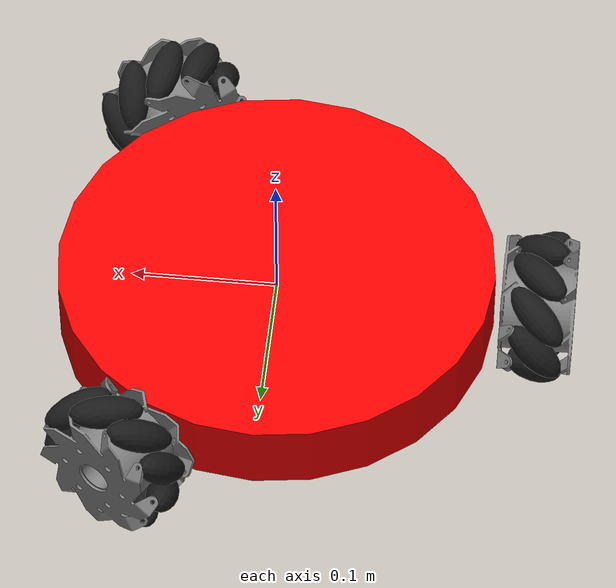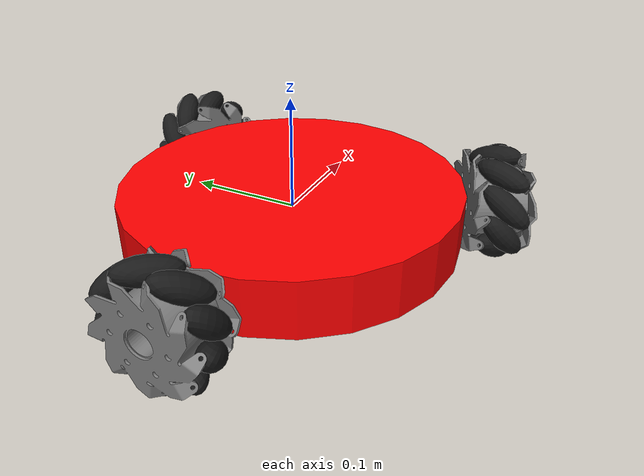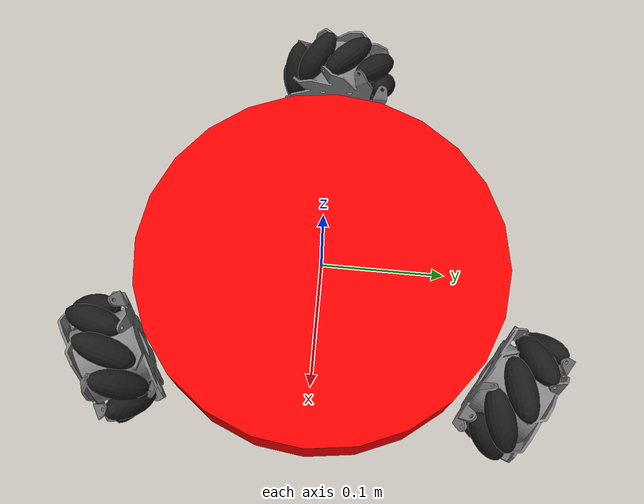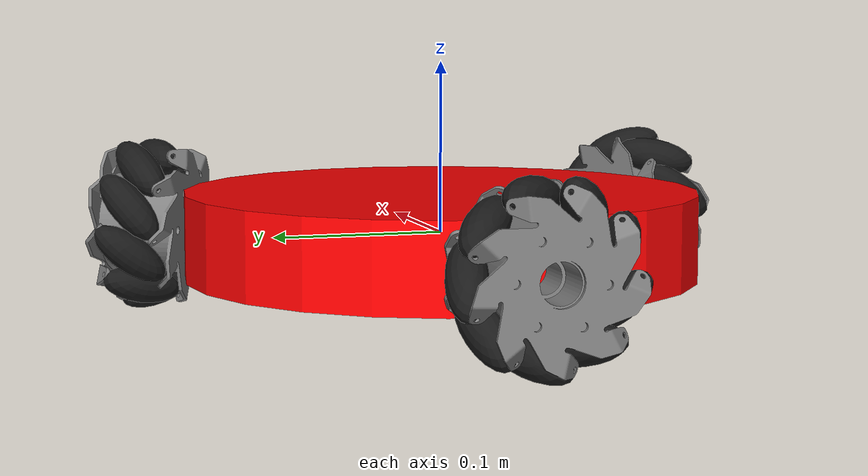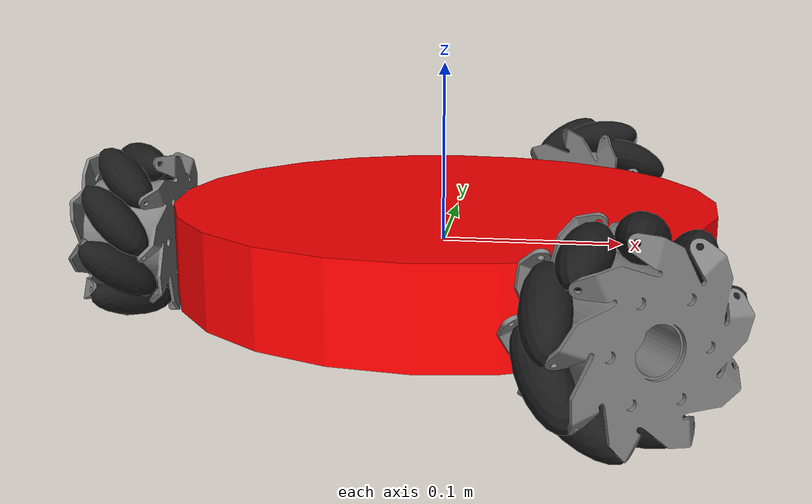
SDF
<?xml version="1.0"?>
<sdf version="1.9">
  <model name="omni3rover">
    <link name="base_link">
      <inertial>
        <mass>1.0</mass>
        <inertia>
          <ixx>0.00875</ixx>
          <ixy>0</ixy>
          <ixz>0</ixz>
          <iyy>0.00875</iyy>
          <iyz>0</iyz>
          <izz>0.016875</izz>
        </inertia>
      </inertial>
      <collision name="collision">
        <geometry>
          <cylinder>
            <radius>0.15</radius>
            <length>0.05</length>
          </cylinder>
        </geometry>
      </collision>
      <visual name="visual">
        <geometry>
          <cylinder>
            <radius>0.15</radius>
            <length>0.05</length>
          </cylinder>
        </geometry>
        <material>
          <ambient>1 0 0</ambient>
          <diffuse>1 0 0</diffuse>
          <specular>0.1 0.1 0.1</specular>
        </material>
      </visual>

      <!-- senors -->
      <sensor name="imu_sensor" type="imu">
        <pose degrees="true">0 0 0 180 0 0</pose>
        <always_on>1</always_on>
        <update_rate>1000.0</update_rate>
      </sensor>
    </link>

    <!-- wheels -->
    <include>
      <uri>model://mecanum_wheel_left</uri>
      <pose degrees="true">0.09 -0.155884573 0 90 0 30</pose>
      <name>wheel_1</name>
    </include>
    <joint name="wheel_1_joint" type="revolute">
      <child>wheel_1::wheel_link</child>
      <parent>base_link</parent>
      <axis>
        <xyz>0 0 1</xyz>
        <limit>
          <lower>-1.0e16</lower>
          <upper>1.0e16</upper>
          <effort>1.0e6</effort>
        </limit>
        <dynamics>
          <damping>0.0001</damping>
        </dynamics>
      </axis>
    </joint>

    <include>
      <uri>model://mecanum_wheel_left</uri>
      <pose degrees="true">-0.18 0 0 -90 0 90</pose>
      <name>wheel_2</name>
    </include>
    <joint name="wheel_2_joint" type="revolute">
      <child>wheel_2::wheel_link</child>
      <parent>base_link</parent>
      <axis>
        <xyz>0 0 1</xyz>
        <limit>
          <lower>-1.0e16</lower>
          <upper>1.0e16</upper>
          <effort>1.0e6</effort>
        </limit>
        <dynamics>
          <damping>0.0001</damping>
        </dynamics>
      </axis>
    </joint>

    <include>
      <uri>model://mecanum_wheel_left</uri>
      <pose degrees="true">0.09 0.155884573 0 -90 0 -30</pose>
      <name>wheel_3</name>
    </include>
    <joint name="wheel_3_joint" type="revolute">
      <child>wheel_3::wheel_link</child>
      <parent>base_link</parent>
      <axis>
        <xyz>0 0 1</xyz>
        <limit>
          <lower>-1.0e16</lower>
          <upper>1.0e16</upper>
          <effort>1.0e6</effort>
        </limit>
        <dynamics>
          <damping>0.0001</damping>
        </dynamics>
      </axis>
    </joint>

    <plugin filename="gz-sim-joint-state-publisher-system"
      name="gz::sim::systems::JointStatePublisher">
    </plugin>
    <plugin
      filename="gz-sim-odometry-publisher-system"
      name="gz::sim::systems::OdometryPublisher">
      <odom_frame>odom</odom_frame>
      <robot_base_frame>base_link</robot_base_frame>
      <dimensions>3</dimensions>
    </plugin>

    <plugin name="gz::sim::systems::JointController"
      filename="gz-sim-joint-controller-system">
      <joint_name>wheel_1_joint</joint_name>
      <use_force_commands>1</use_force_commands>
      <topic>/model/omni3rover/joint/wheel_1_joint/cmd_vel</topic>
      <initial_velocity>0.0</initial_velocity>
      <p_gain>0.3</p_gain>
      <d_gain>1.0e-4</d_gain>
      <cmd_max>1.0e6</cmd_max>
      <cmd_min>-1.0e6</cmd_min>
    </plugin>
    <plugin name="gz::sim::systems::JointController"
      filename="gz-sim-joint-controller-system">
      <joint_name>wheel_2_joint</joint_name>
      <use_force_commands>1</use_force_commands>
      <topic>/model/omni3rover/joint/wheel_2_joint/cmd_vel</topic>
      <initial_velocity>0.0</initial_velocity>
      <p_gain>0.3</p_gain>
      <d_gain>1.0e-4</d_gain>
      <cmd_max>1.0e6</cmd_max>
      <cmd_min>-1.0e6</cmd_min>
    </plugin>
    <plugin name="gz::sim::systems::JointController"
      filename="gz-sim-joint-controller-system">
      <joint_name>wheel_3_joint</joint_name>
      <use_force_commands>1</use_force_commands>
      <topic>/model/omni3rover/joint/wheel_3_joint/cmd_vel</topic>
      <initial_velocity>0.0</initial_velocity>
      <p_gain>0.3</p_gain>
      <d_gain>1.0e-4</d_gain>
      <cmd_max>1.0e6</cmd_max>
      <cmd_min>-1.0e6</cmd_min>
    </plugin>

    <plugin name="ArduPilotPlugin"
      filename="ArduPilotPlugin">
      <fdm_addr>127.0.0.1</fdm_addr>
      <fdm_port_in>9002</fdm_port_in>
      <connectionTimeoutMaxCount>5</connectionTimeoutMaxCount>
      <lock_step>1</lock_step>
      <no_time_sync>1</no_time_sync>
      <have_32_channels>0</have_32_channels>
      <modelXYZToAirplaneXForwardZDown degrees="true">0 0 0 180 0 0</modelXYZToAirplaneXForwardZDown>
      <gazeboXYZToNED degrees="true">0 0 0 180 0 90</gazeboXYZToNED>
      <imuName>base_link::imu_sensor</imuName>

      <control channel="0">
        <jointName>wheel_1_joint</jointName>
        <useForce>1</useForce>
        <multiplier>100</multiplier>
        <offset>-0.5</offset>
        <servo_max>2000</servo_max>
        <servo_min>1000</servo_min>
        <type>COMMAND</type>
        <cmd_topic>/model/omni3rover/joint/wheel_1_joint/cmd_vel</cmd_topic>
      </control>

      <control channel="1">
        <jointName>wheel_2_joint</jointName>
        <useForce>1</useForce>
        <multiplier>100</multiplier>
        <offset>-0.5</offset>
        <servo_max>2000</servo_max>
        <servo_min>1000</servo_min>
        <type>COMMAND</type>
        <cmd_topic>/model/omni3rover/joint/wheel_2_joint/cmd_vel</cmd_topic>
      </control>

      <control channel="2">
        <jointName>wheel_3_joint</jointName>
        <useForce>1</useForce>
        <multiplier>100</multiplier>
        <offset>-0.5</offset>
        <servo_max>2000</servo_max>
        <servo_min>1000</servo_min>
        <type>COMMAND</type>
        <cmd_topic>/model/omni3rover/joint/wheel_3_joint/cmd_vel</cmd_topic>
      </control>
    </plugin>

  </model>
</sdf>

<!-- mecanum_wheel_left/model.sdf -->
<sdf version="1.9">
  <model name="mecanum_wheel_left">
    <link name="wheel_link">
      <pose>0 0 0 0 0 0</pose>
      <inertial>
        <pose>0 0 0 0 0 0</pose>
        <mass>0.045</mass>
        <inertia>
          <ixx>3.44913E-05</ixx>
          <ixy>0</ixy>
          <ixz>0</ixz>
          <iyy>3.44913E-05</iyy>
          <iyz>0</iyz>
          <izz>5.02327E-05</izz>
        </inertia>
      </inertial>
      <collision name="wheel1_collision">
        <pose>0 0 0.0225 0 0 0</pose>
        <geometry>
          <cylinder>
            <radius>0.04725</radius>
            <length>0.005</length>
          </cylinder>
        </geometry>
      </collision>
      <collision name="wheel2_collision">
        <pose>0 0 -0.0225 0 0 0</pose>
        <geometry>
          <cylinder>
            <radius>0.04725</radius>
            <length>0.005</length>
          </cylinder>
        </geometry>
      </collision>
      <visual name="wheel_visual">
        <geometry>
          <mesh>
            <uri>models://mecanum_wheel_left/meshes/mecanum_wheel_frame_left.stl</uri>
          </mesh>
        </geometry>
        <material>
          <ambient>0.5 0.5 0.5</ambient>
          <diffuse>0.5 0.5 0.5</diffuse>
          <specular>0.1 0.1 0.1</specular>
        </material>
      </visual>

    </link>

    <link name="roller_1_link">
      <pose degrees="true">0.040288288 0 0 -45 2 0</pose>
      <inertial>
        <pose>0 0 0 0 0 0</pose>
        <mass>0.015838863</mass>
        <inertia>
          <ixx>2.36316E-06</ixx>
          <ixy>0</ixy>
          <ixz>0</ixz>
          <iyy>2.36316E-06</iyy>
          <iyz>0</iyz>
          <izz>7.66601E-07</izz>
        </inertia>
      </inertial>
      <collision name="collision">
        <pose degrees="true">0 0 0 90 9 0</pose>
        <geometry>
          <sphere>
            <radius>0.011</radius>
          </sphere>
        </geometry>
        <surface>
          <friction>
            <ode>
              <mu>10.0</mu>
              <mu2>10.0</mu2>
            </ode>
          </friction>
        </surface>
      </collision>
      <visual name="visual">
        <pose degrees="true">0 0 0 90 9 0</pose>
        <geometry>
          <ellipsoid>
            <radii>0.011 0.025 0.011</radii>
          </ellipsoid>
        </geometry>
        <material>
          <ambient>0.1 0.1 0.1</ambient>
          <diffuse>0.1 0.1 0.1</diffuse>
          <specular>0.1 0.1 0.1</specular>
        </material>
      </visual>
    </link>
    <joint name="roller_1_joint" type="revolute">
      <child>roller_1_link</child>
      <parent>wheel_link</parent>
      <axis>
        <xyz>0 0 1</xyz>
        <limit>
          <lower>-1.0e16</lower>
          <upper>1.0e16</upper>
        </limit>
        <dynamics>
          <damping>0.0000</damping>
          <friction>0.0001</friction>
        </dynamics>
      </axis>
    </joint>

    <link name="roller_2_link">
      <pose degrees="true">0.030862619 0.025896812 0 -45 2 40</pose>
      <inertial>
        <pose>0 0 0 0 0 0</pose>
        <mass>0.015838863</mass>
        <inertia>
          <ixx>2.36316E-06</ixx>
          <ixy>0</ixy>
          <ixz>0</ixz>
          <iyy>2.36316E-06</iyy>
          <iyz>0</iyz>
          <izz>7.66601E-07</izz>
        </inertia>
      </inertial>
      <collision name="collision">
        <pose degrees="true">0 0 0 90 9 0</pose>
        <geometry>
          <sphere>
            <radius>0.011</radius>
          </sphere>
        </geometry>
        <surface>
          <friction>
            <ode>
              <mu>10.0</mu>
              <mu2>10.0</mu2>
            </ode>
          </friction>
        </surface>
      </collision>
      <visual name="visual">
        <pose degrees="true">0 0 0 90 9 0</pose>
        <geometry>
          <ellipsoid>
            <radii>0.011 0.025 0.011</radii>
          </ellipsoid>
        </geometry>
        <material>
          <ambient>0.1 0.1 0.1</ambient>
          <diffuse>0.1 0.1 0.1</diffuse>
          <specular>0.1 0.1 0.1</specular>
        </material>
      </visual>
    </link>
    <joint name="roller_2_joint" type="revolute">
      <child>roller_2_link</child>
      <parent>wheel_link</parent>
      <axis>
        <xyz>0 0 1</xyz>
        <limit>
          <lower>-1.0e16</lower>
          <upper>1.0e16</upper>
        </limit>
        <dynamics>
          <damping>0.0000</damping>
          <friction>0.0001</friction>
        </dynamics>
      </axis>
    </joint>

    <link name="roller_3_link">
      <pose degrees="true">0.006995988 0.039676218 0 -45 2 80</pose>
      <inertial>
        <pose>0 0 0 0 0 0</pose>
        <mass>0.015838863</mass>
        <inertia>
          <ixx>2.36316E-06</ixx>
          <ixy>0</ixy>
          <ixz>0</ixz>
          <iyy>2.36316E-06</iyy>
          <iyz>0</iyz>
          <izz>7.66601E-07</izz>
        </inertia>
      </inertial>
      <collision name="collision">
        <pose degrees="true">0 0 0 90 9 0</pose>
        <geometry>
          <sphere>
            <radius>0.011</radius>
          </sphere>
        </geometry>
        <surface>
          <friction>
            <ode>
              <mu>10.0</mu>
              <mu2>10.0</mu2>
            </ode>
          </friction>
        </surface>
      </collision>
      <visual name="visual">
        <pose degrees="true">0 0 0 90 9 0</pose>
        <geometry>
          <ellipsoid>
            <radii>0.011 0.025 0.011</radii>
          </ellipsoid>
        </geometry>
        <material>
          <ambient>0.1 0.1 0.1</ambient>
          <diffuse>0.1 0.1 0.1</diffuse>
          <specular>0.1 0.1 0.1</specular>
        </material>
      </visual>
    </link>
    <joint name="roller_3_joint" type="revolute">
      <child>roller_3_link</child>
      <parent>wheel_link</parent>
      <axis>
        <xyz>0 0 1</xyz>
        <limit>
          <lower>-1.0e16</lower>
          <upper>1.0e16</upper>
        </limit>
        <dynamics>
          <damping>0.0000</damping>
          <friction>0.0001</friction>
        </dynamics>
      </axis>
    </joint>

    <link name="roller_4_link">
      <pose degrees="true">-0.020144144 0.034890681 0 -45 2 120</pose>
      <inertial>
        <pose>0 0 0 0 0 0</pose>
        <mass>0.015838863</mass>
        <inertia>
          <ixx>2.36316E-06</ixx>
          <ixy>0</ixy>
          <ixz>0</ixz>
          <iyy>2.36316E-06</iyy>
          <iyz>0</iyz>
          <izz>7.66601E-07</izz>
        </inertia>
      </inertial>
      <collision name="collision">
        <pose degrees="true">0 0 0 90 9 0</pose>
        <geometry>
          <sphere>
            <radius>0.011</radius>
          </sphere>
        </geometry>
        <surface>
          <friction>
            <ode>
              <mu>10.0</mu>
              <mu2>10.0</mu2>
            </ode>
          </friction>
        </surface>
      </collision>
      <visual name="visual">
        <pose degrees="true">0 0 0 90 9 0</pose>
        <geometry>
          <ellipsoid>
            <radii>0.011 0.025 0.011</radii>
          </ellipsoid>
        </geometry>
        <material>
          <ambient>0.1 0.1 0.1</ambient>
          <diffuse>0.1 0.1 0.1</diffuse>
          <specular>0.1 0.1 0.1</specular>
        </material>
      </visual>
    </link>
    <joint name="roller_4_joint" type="revolute">
      <child>roller_4_link</child>
      <parent>wheel_link</parent>
      <axis>
        <xyz>0 0 1</xyz>
        <limit>
          <lower>-1.0e16</lower>
          <upper>1.0e16</upper>
        </limit>
        <dynamics>
          <damping>0.0000</damping>
          <friction>0.0001</friction>
        </dynamics>
      </axis>
    </joint>

    <link name="roller_5_link">
      <pose degrees="true">-0.037858607 0.013779406 0 -45 2 160</pose>
      <inertial>
        <pose>0 0 0 0 0 0</pose>
        <mass>0.015838863</mass>
        <inertia>
          <ixx>2.36316E-06</ixx>
          <ixy>0</ixy>
          <ixz>0</ixz>
          <iyy>2.36316E-06</iyy>
          <iyz>0</iyz>
          <izz>7.66601E-07</izz>
        </inertia>
      </inertial>
      <collision name="collision">
        <pose degrees="true">0 0 0 90 9 0</pose>
        <geometry>
          <sphere>
            <radius>0.011</radius>
          </sphere>
        </geometry>
        <surface>
          <friction>
            <ode>
              <mu>10.0</mu>
              <mu2>10.0</mu2>
            </ode>
          </friction>
        </surface>
      </collision>
      <visual name="visual">
        <pose degrees="true">0 0 0 90 9 0</pose>
        <geometry>
          <ellipsoid>
            <radii>0.011 0.025 0.011</radii>
          </ellipsoid>
        </geometry>
        <material>
          <ambient>0.1 0.1 0.1</ambient>
          <diffuse>0.1 0.1 0.1</diffuse>
          <specular>0.1 0.1 0.1</specular>
        </material>
      </visual>
    </link>
    <joint name="roller_5_joint" type="revolute">
      <child>roller_5_link</child>
      <parent>wheel_link</parent>
      <axis>
        <xyz>0 0 1</xyz>
        <limit>
          <lower>-1.0e16</lower>
          <upper>1.0e16</upper>
        </limit>
        <dynamics>
          <damping>0.0000</damping>
          <friction>0.0001</friction>
        </dynamics>
      </axis>
    </joint>

    <link name="roller_6_link">
      <pose degrees="true">-0.037858607 -0.013779406 0 -45 2 200</pose>
      <inertial>
        <pose>0 0 0 0 0 0</pose>
        <mass>0.015838863</mass>
        <inertia>
          <ixx>2.36316E-06</ixx>
          <ixy>0</ixy>
          <ixz>0</ixz>
          <iyy>2.36316E-06</iyy>
          <iyz>0</iyz>
          <izz>7.66601E-07</izz>
        </inertia>
      </inertial>
      <collision name="collision">
        <pose degrees="true">0 0 0 90 9 0</pose>
        <geometry>
          <sphere>
            <radius>0.011</radius>
          </sphere>
        </geometry>
        <surface>
          <friction>
            <ode>
              <mu>10.0</mu>
              <mu2>10.0</mu2>
            </ode>
          </friction>
        </surface>
      </collision>
      <visual name="visual">
        <pose degrees="true">0 0 0 90 9 0</pose>
        <geometry>
          <ellipsoid>
            <radii>0.011 0.025 0.011</radii>
          </ellipsoid>
        </geometry>
        <material>
          <ambient>0.1 0.1 0.1</ambient>
          <diffuse>0.1 0.1 0.1</diffuse>
          <specular>0.1 0.1 0.1</specular>
        </material>
      </visual>
    </link>
    <joint name="roller_6_joint" type="revolute">
      <child>roller_6_link</child>
      <parent>wheel_link</parent>
      <axis>
        <xyz>0 0 1</xyz>
        <limit>
          <lower>-1.0e16</lower>
          <upper>1.0e16</upper>
        </limit>
        <dynamics>
          <damping>0.0000</damping>
          <friction>0.0001</friction>
        </dynamics>
      </axis>
    </joint>

    <link name="roller_7_link">
      <pose degrees="true">-0.020144144 -0.034890681 0 -45 2 240</pose>
      <inertial>
        <pose>0 0 0 0 0 0</pose>
        <mass>0.015838863</mass>
        <inertia>
          <ixx>2.36316E-06</ixx>
          <ixy>0</ixy>
          <ixz>0</ixz>
          <iyy>2.36316E-06</iyy>
          <iyz>0</iyz>
          <izz>7.66601E-07</izz>
        </inertia>
      </inertial>
      <collision name="collision">
        <pose degrees="true">0 0 0 90 9 0</pose>
        <geometry>
          <sphere>
            <radius>0.011</radius>
          </sphere>
        </geometry>
        <surface>
          <friction>
            <ode>
              <mu>10.0</mu>
              <mu2>10.0</mu2>
            </ode>
          </friction>
        </surface>
      </collision>
      <visual name="visual">
        <pose degrees="true">0 0 0 90 9 0</pose>
        <geometry>
          <ellipsoid>
            <radii>0.011 0.025 0.011</radii>
          </ellipsoid>
        </geometry>
        <material>
          <ambient>0.1 0.1 0.1</ambient>
          <diffuse>0.1 0.1 0.1</diffuse>
          <specular>0.1 0.1 0.1</specular>
        </material>
      </visual>
    </link>
    <joint name="roller_7_joint" type="revolute">
      <child>roller_7_link</child>
      <parent>wheel_link</parent>
      <axis>
        <xyz>0 0 1</xyz>
        <limit>
          <lower>-1.0e16</lower>
          <upper>1.0e16</upper>
        </limit>
        <dynamics>
          <damping>0.0000</damping>
          <friction>0.0001</friction>
        </dynamics>
      </axis>
    </joint>

    <link name="roller_8_link">
      <pose degrees="true">0.006995988 -0.039676218 0 -45 2 280</pose>
      <inertial>
        <pose>0 0 0 0 0 0</pose>
        <mass>0.015838863</mass>
        <inertia>
          <ixx>2.36316E-06</ixx>
          <ixy>0</ixy>
          <ixz>0</ixz>
          <iyy>2.36316E-06</iyy>
          <iyz>0</iyz>
          <izz>7.66601E-07</izz>
        </inertia>
      </inertial>
      <collision name="collision">
        <pose degrees="true">0 0 0 90 9 0</pose>
        <geometry>
          <sphere>
            <radius>0.011</radius>
          </sphere>
        </geometry>
        <surface>
          <friction>
            <ode>
              <mu>10.0</mu>
              <mu2>10.0</mu2>
            </ode>
          </friction>
        </surface>
      </collision>
      <visual name="visual">
        <pose degrees="true">0 0 0 90 9 0</pose>
        <geometry>
          <ellipsoid>
            <radii>0.011 0.025 0.011</radii>
          </ellipsoid>
        </geometry>
        <material>
          <ambient>0.1 0.1 0.1</ambient>
          <diffuse>0.1 0.1 0.1</diffuse>
          <specular>0.1 0.1 0.1</specular>
        </material>
      </visual>
    </link>
    <joint name="roller_8_joint" type="revolute">
      <child>roller_8_link</child>
      <parent>wheel_link</parent>
      <axis>
        <xyz>0 0 1</xyz>
        <limit>
          <lower>-1.0e16</lower>
          <upper>1.0e16</upper>
        </limit>
        <dynamics>
          <damping>0.0000</damping>
          <friction>0.0001</friction>
        </dynamics>
      </axis>
    </joint>

    <link name="roller_9_link">
      <pose degrees="true">0.030862619 -0.025896812 0 -45 2 320</pose>
      <inertial>
        <pose>0 0 0 0 0 0</pose>
        <mass>0.015838863</mass>
        <inertia>
          <ixx>2.36316E-06</ixx>
          <ixy>0</ixy>
          <ixz>0</ixz>
          <iyy>2.36316E-06</iyy>
          <iyz>0</iyz>
          <izz>7.66601E-07</izz>
        </inertia>
      </inertial>
      <collision name="collision">
        <pose degrees="true">0 0 0 90 9 0</pose>
        <geometry>
          <sphere>
            <radius>0.011</radius>
          </sphere>
        </geometry>
        <surface>
          <friction>
            <ode>
              <mu>10.0</mu>
              <mu2>10.0</mu2>
            </ode>
          </friction>
        </surface>
      </collision>
      <visual name="visual">
        <pose degrees="true">0 0 0 90 9 0</pose>
        <geometry>
          <ellipsoid>
            <radii>0.011 0.025 0.011</radii>
          </ellipsoid>
        </geometry>
        <material>
          <ambient>0.1 0.1 0.1</ambient>
          <diffuse>0.1 0.1 0.1</diffuse>
          <specular>0.1 0.1 0.1</specular>
        </material>
      </visual>
    </link>
    <joint name="roller_9_joint" type="revolute">
      <child>roller_9_link</child>
      <parent>wheel_link</parent>
      <axis>
        <xyz>0 0 1</xyz>
        <limit>
          <lower>-1.0e16</lower>
          <upper>1.0e16</upper>
        </limit>
        <dynamics>
          <damping>0.0000</damping>
          <friction>0.0001</friction>
        </dynamics>
      </axis>
    </joint>

  </model>
</sdf>
